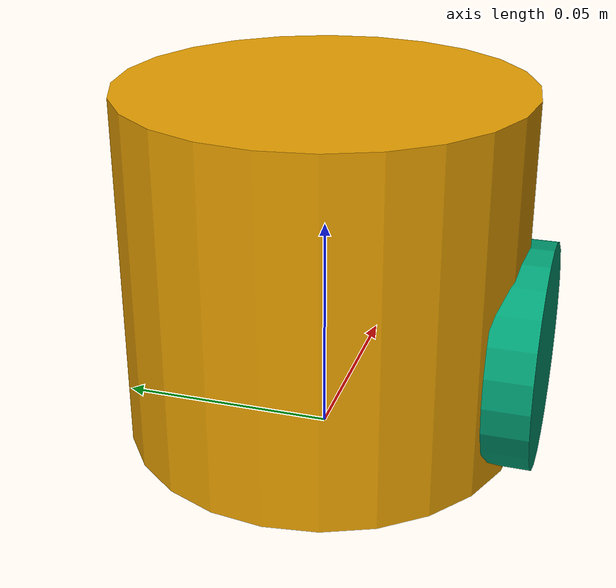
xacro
<?xml version="1.0"?>
<robot name="bobat" xmlns:xacro="http://ros.org/wiki/xacro">
  <xacro:arg name="robot_id" default="/"/>
  <link name="$(arg robot_id)base_link">
    <visual>
      <origin xyz="0 0 0.0415" rpy="0 0 0"/>
      <geometry>
        <cylinder radius="0.045" length="0.08"/>
      </geometry>
    </visual>
    <collision>
      <origin xyz="0 0 0.0415" rpy="0 0 0"/>
      <geometry>
        <cylinder radius="0.045" length="0.08"/>
      </geometry>
    </collision>
  </link>
  <joint name="right wheel motor" type="continuous">
    <parent link="$(arg robot_id)base_link"/>
    <child link="$(arg robot_id)right_wheel"/>
    <axis xyz="0 1 0"/>
    <limit effort="10" velocity="10"/>
    <origin xyz="0 0 0.025" rpy="-3.141593 0.645101 -3.141593"/>
  </joint>
  <link name="$(arg robot_id)right_wheel">
    <visual>
      <origin xyz="0 -0.0 0" rpy="1.5708 0 0"/>
      <geometry>
        <cylinder radius="0.025" length="0.01"/>
      </geometry>
    </visual>
    <collision>
      <origin xyz="0 -0.0 0" rpy="1.5708 0 0"/>
      <geometry>
        <cylinder radius="0.025" length="0.01"/>
      </geometry>
    </collision>
  </link>
  <joint name="left wheel motor" type="continuous">
    <parent link="$(arg robot_id)base_link"/>
    <child link="$(arg robot_id)left_wheel"/>
    <axis xyz="0 1 0"/>
    <limit effort="10" velocity="10"/>
    <origin xyz="0 -0.045 0.025" rpy="0 -0.809141 0"/>
  </joint>
  <link name="$(arg robot_id)left_wheel">
    <visual>
      <origin xyz="0 0.0 0" rpy="1.5708 0 0"/>
      <geometry>
        <cylinder radius="0.025" length="0.01"/>
      </geometry>
    </visual>
    <collision>
      <origin xyz="0 0.0 0" rpy="1.5708 0 0"/>
      <geometry>
        <cylinder radius="0.025" length="0.01"/>
      </geometry>
    </collision>
  </link>
</robot>
